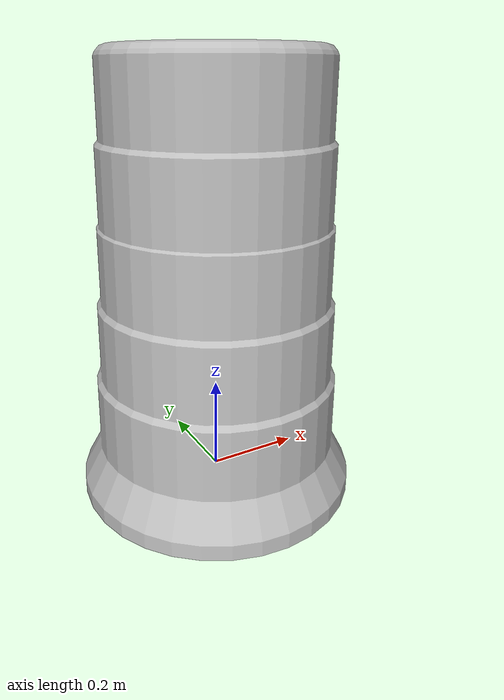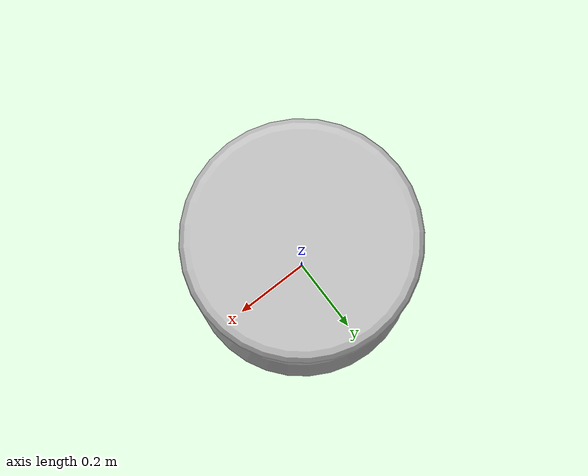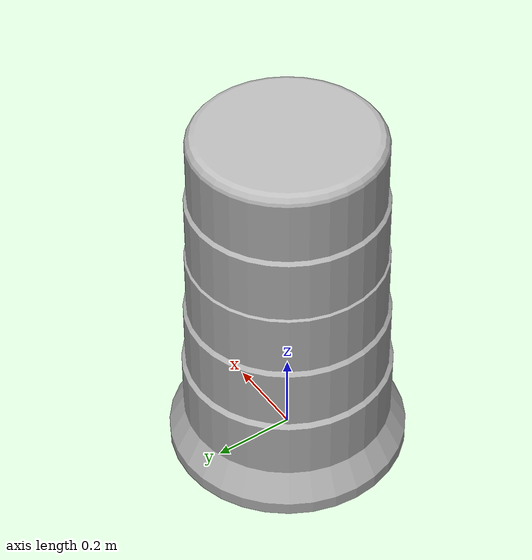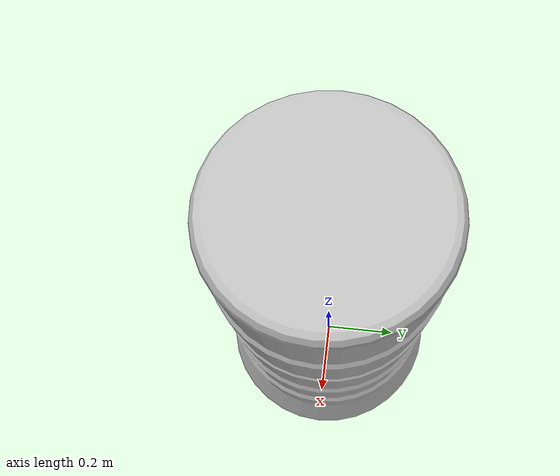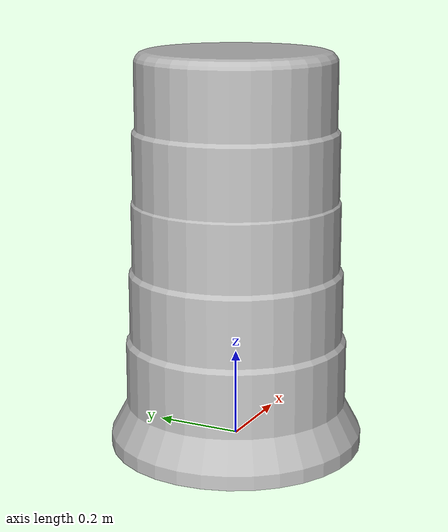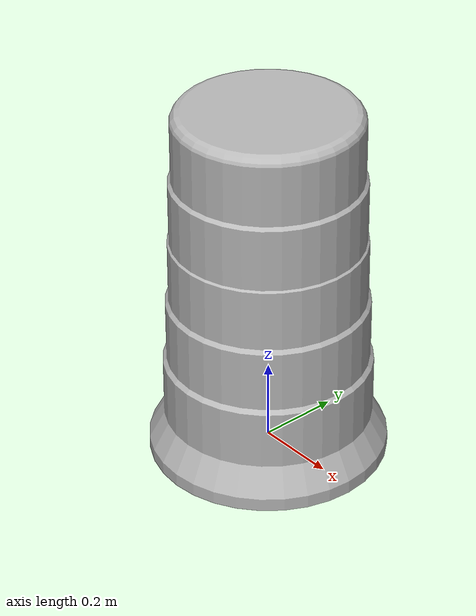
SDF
<?xml version="1.0"?>
<sdf version="1.5">
  <model name='construction_barrel'>
    <link name='link'>
      <gravity>1</gravity>
      <inertial>
        <mass>500</mass>
        <inertia>
          <ixx>51.2096</ixx>
          <iyy>51.2096</iyy>
          <izz>25</izz>
          <ixy>0</ixy>
          <ixz>0</ixz>
          <iyz>0</iyz>
        </inertia>
      </inertial>
      <collision name='collision'>
        <pose> 0 0 0.5 0 0 0 </pose>
        <geometry>
           <cylinder>
             <radius>0.3</radius>
             <length>1.0</length>
           </cylinder>
        </geometry>
        <max_contacts>10</max_contacts>
        <surface>
          <contact>
            <ode/>
          </contact>
          <bounce/>
          <friction>
            <torsional>
              <ode/>
            </torsional>
            <ode/>
          </friction>
        </surface>
      </collision>
      <visual name='visual'>
        <geometry>
          <mesh>
            <uri>model://barrel/meshes/barrel.dae</uri>
            <scale>1 1 1</scale>
          </mesh>
        </geometry>
      </visual>
      <self_collide>0</self_collide>
      <kinematic>0</kinematic>
    </link>
  </model>
</sdf>
